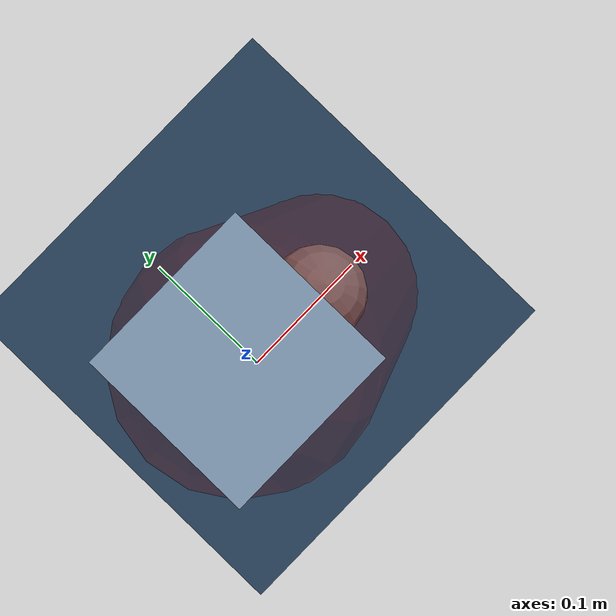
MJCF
<mujoco model="Hopper2D">
	<compiler inertiafromgeom="true" angle="radian" />
	<option timestep="0.001" integrator="implicit" cone="elliptic" solver="Newton" tolerance="1e-10" />

	<default>
		<geom contype="1" conaffinity="1" condim="3" friction="2 0.005 0.0001" solref="0.005 1" />
		<joint limited="true" damping="0.1" />
	</default>

	<asset>
		<texture name="skybox" type="skybox" builtin="gradient" rgb1=".4 .6 .8" rgb2="0 0 0" width="800" height="800" />
		<texture name="grid" type="2d" builtin="checker" rgb1=".1 .2 .3" rgb2=".2 .3 .4" width="300" height="300" mark="edge" markrgb=".2 .3 .4" />
		<material name="ground" texture="grid" texrepeat="1 1" texuniform="true" reflectance="0.1" />
		<material name="leg" rgba="0.5 0.6 0.7 1" />
	</asset>

	<worldbody>

		<geom name="floor" type="plane" size="5 5 0.25" material="ground" />

		<light directional="false" diffuse="0.8 0.8 0.8" specular="0.3 0.3 0.3" pos="0 0 2" dir="0 0 -1" />
		<light mode="targetbodycom" target="base" directional="false" diffuse="0.8 0.8 0.8" specular="0.3 0.3 0.3" pos="0 0 2" dir="0 0 -1" />

		<camera name="fixed" pos="0 -2 1" xyaxes="1 0 0 0 0 1" />
		<camera name="tracking" mode="trackcom" pos="0 -3 1" />

		<body name="root" pos="0 0 0.49941815673592904">
			<joint name="slide_x" type="slide" axis="1 0 0" range="-100 100" />
			<joint name="slide_z" type="slide" axis="0 0 1" range="0 10" />

			<body name="base" pos="0 0 0">
				<geom name="torso" type="box" size="0.03 0.03 0.1" mass="1.6920000000000002" material="leg" />

				<body name="link1" pos="0 0 0" euler="0 1.3229039031467718 0">
					<joint type="hinge" axis="0 -1 0" pos="0 0 0" name="hinge1" limited="true" range="-3.14 3.14" stiffness="0" damping="0.1" />
					<geom name="thigh" type="capsule" fromto="0 0 0 0.1996401531289817 0 0" size="0.05" rgba="0.5 0 0 0.3" mass="0.7287363675095561" />

					<body name="link2" pos="0.1996401531289817 0 0" euler="0 0.40668498081248555 0">
						<joint type="hinge" axis="0 -1 0" pos="0 0 0" name="hinge2" limited="true" range="-3.14 3.14" stiffness="0" damping="0.1" />
						<geom name="shank" type="capsule" fromto="0 0 0 0.3097780036069474 0 0" size="0.025" mass="0.49140020324625266" />

					</body>
				</body>
			</body>
		</body>
	</worldbody>

	<actuator>
		<motor name="torque1" joint="hinge1" ctrlrange="-72.24768852995471 72.24768852995471" ctrllimited="true" gear="1" />
		<motor name="torque2" joint="hinge2" ctrlrange="-21.143662269447763 21.143662269447763" ctrllimited="true" gear="1" />
	</actuator>
</mujoco>
